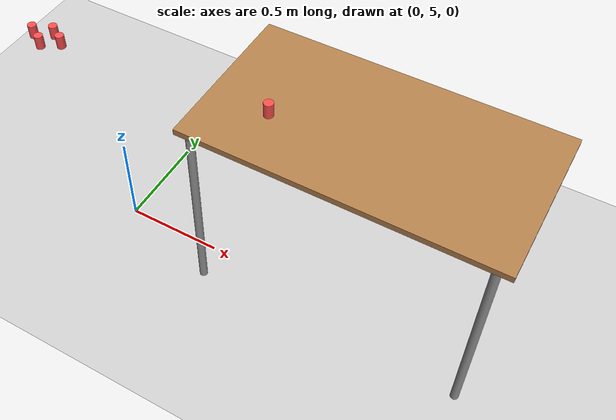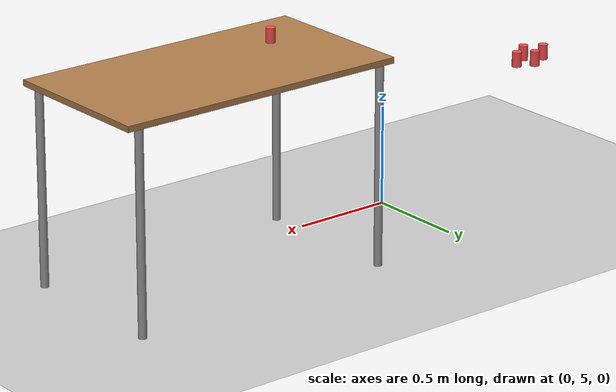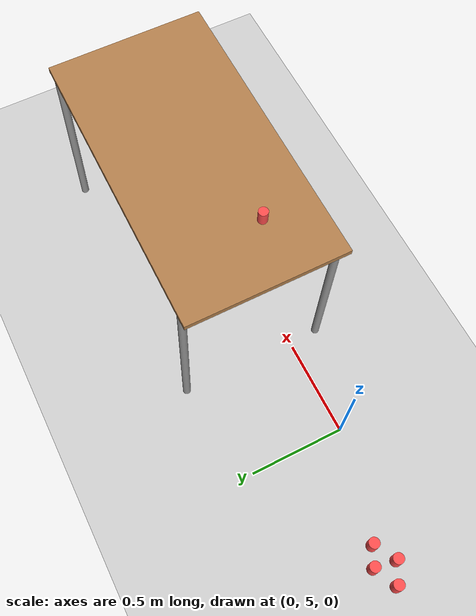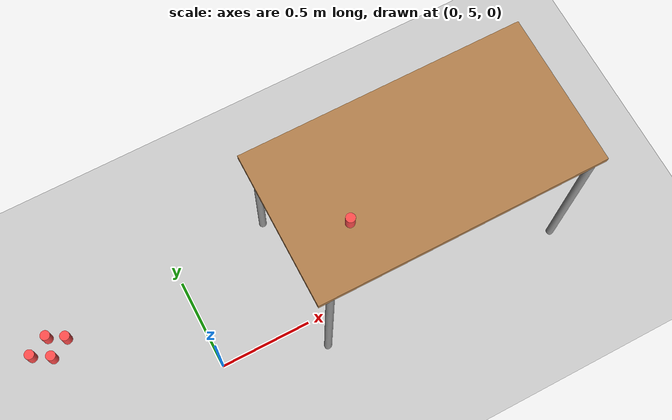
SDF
<sdf version="1.6">
 <world name="default">
  <model name="ground_plane">
   <static>1</static>
   <link name="link">
    <collision name="collision">
     <geometry><plane><normal>0 0 1</normal><size>100 100</size></plane></geometry>
     <surface><friction><ode><mu>100</mu><mu2>50</mu2></ode></friction></surface>
    </collision>
    <visual name="visual">
     <cast_shadows>0</cast_shadows>
     <geometry><plane><normal>0 0 1</normal><size>100 100</size></plane></geometry>
     <material>
      <script><uri>file://media/materials/scripts/gazebo.material</uri><name>Gazebo/Grey</name></script>
     </material>
    </visual>
   </link>
  </model>
  <model name="table">
   <static>1</static>
   <link name="link">
    <collision name="surface">
     <pose>0 0 1 0 -0 0</pose>
     <geometry><box><size>1.5 0.8 0.03</size></box></geometry>
     <surface><friction><ode><mu>0.6</mu><mu2>0.6</mu2></ode></friction></surface>
    </collision>
    <visual name="visual1">
     <pose>0 0 1 0 -0 0</pose>
     <geometry><box><size>1.5 0.8 0.03</size></box></geometry>
     <material>
      <script><uri>file://media/materials/scripts/gazebo.material</uri><name>Gazebo/Wood</name></script>
     </material>
    </visual>
    <collision name="front_left_leg">
     <pose>0.68 0.38 0.5 0 -0 0</pose>
     <geometry><cylinder><radius>0.02</radius><length>1</length></cylinder></geometry>
    </collision>
    <visual name="front_left_leg">
     <pose>0.68 0.38 0.5 0 -0 0</pose>
     <geometry><cylinder><radius>0.02</radius><length>1</length></cylinder></geometry>
     <material>
      <script><uri>file://media/materials/scripts/gazebo.material</uri><name>Gazebo/Grey</name></script>
     </material>
    </visual>
    <collision name="front_right_leg">
     <pose>0.68 -0.38 0.5 0 -0 0</pose>
     <geometry><cylinder><radius>0.02</radius><length>1</length></cylinder></geometry>
    </collision>
    <visual name="front_right_leg">
     <pose>0.68 -0.38 0.5 0 -0 0</pose>
     <geometry><cylinder><radius>0.02</radius><length>1</length></cylinder></geometry>
     <material>
      <script><uri>file://media/materials/scripts/gazebo.material</uri><name>Gazebo/Grey</name></script>
     </material>
    </visual>
    <collision name="back_right_leg">
     <pose>-0.68 -0.38 0.5 0 -0 0</pose>
     <geometry><cylinder><radius>0.02</radius><length>1</length></cylinder></geometry>
    </collision>
    <visual name="back_right_leg">
     <pose>-0.68 -0.38 0.5 0 -0 0</pose>
     <geometry><cylinder><radius>0.02</radius><length>1</length></cylinder></geometry>
     <material>
      <script><uri>file://media/materials/scripts/gazebo.material</uri><name>Gazebo/Grey</name></script>
     </material>
    </visual>
    <collision name="back_left_leg">
     <pose>-0.68 0.38 0.5 0 -0 0</pose>
     <geometry><cylinder><radius>0.02</radius><length>1</length></cylinder></geometry>
    </collision>
    <visual name="back_left_leg">
     <pose>-0.68 0.38 0.5 0 -0 0</pose>
     <geometry><cylinder><radius>0.02</radius><length>1</length></cylinder></geometry>
     <material>
      <script><uri>file://media/materials/scripts/gazebo.material</uri><name>Gazebo/Grey</name></script>
     </material>
    </visual>
   </link>
   <pose>1.21515 5.225 0 0 -0 0</pose>
  </model>
  <model name="cans">
   <link name="link">
    <inertial>
     <mass>0.362409</mass>
     <inertia>
      <ixx>0.00022647</ixx>
      <ixy>0</ixy>
      <ixz>0</ixz>
      <iyy>0.00022647</iyy>
      <iyz>0</iyz>
      <izz>0.0001015</izz>
     </inertia>
     <pose>0 0 0.2 0 -0 0</pose>
    </inertial>
    <self_collide>1</self_collide>
    <kinematic>1</kinematic>
    <visual name="ModelPreview_8::link::visual_1">
     <geometry><cylinder><radius>0.0236665</radius><length>0.0762781</length></cylinder></geometry>
     <material>
      <script><name>Gazebo/Grey</name><uri>file://media/materials/scripts/gazebo.material</uri></script>
      <shader type="vertex"><normal_map>__default__</normal_map></shader>
      <ambient>1 0.3 0.3 1</ambient>
      <diffuse>0.7 0.7 0.7 1</diffuse>
      <specular>0.01 0.01 0.01 1</specular>
      <emissive>0 0 0 1</emissive>
     </material>
    </visual>
    <visual name="visual">
     <geometry><cylinder><radius>0.0236665</radius><length>0.0762781</length></cylinder></geometry>
     <material>
      <script><name>Gazebo/Grey</name><uri>file://media/materials/scripts/gazebo.material</uri></script>
      <shader type="vertex"><normal_map>__default__</normal_map></shader>
      <ambient>1 0.3 0.3 1</ambient>
      <diffuse>0.7 0.7 0.7 1</diffuse>
      <specular>0.01 0.01 0.01 1</specular>
      <emissive>0 0 0 1</emissive>
     </material>
    </visual>
    <collision name="collision">
     <geometry><cylinder><radius>0.023667</radius><length>0.076278</length></cylinder></geometry>
     <surface>
      <friction>
       <ode><mu>1</mu><mu2>1</mu2><fdir1>0 0 0</fdir1><slip1>0</slip1><slip2>0</slip2></ode>
       <torsional>
        <coefficient>1</coefficient>
        <patch_radius>0</patch_radius>
        <surface_radius>0</surface_radius>
        <use_patch_radius>1</use_patch_radius>
        <ode><slip>0</slip></ode>
       </torsional>
      </friction>
      <bounce><restitution_coefficient>0</restitution_coefficient><threshold>1e+06</threshold></bounce>
      <contact>
       <collide_without_contact>0</collide_without_contact>
       <collide_without_contact_bitmask>1</collide_without_contact_bitmask>
       <collide_bitmask>1</collide_bitmask>
       <ode>
        <soft_cfm>0</soft_cfm>
        <soft_erp>0.2</soft_erp>
        <kp>1e+13</kp>
        <kd>1</kd>
        <max_vel>0.01</max_vel>
        <min_depth>0</min_depth>
       </ode>
       <bullet>
        <split_impulse>1</split_impulse>
        <split_impulse_penetration_threshold>-0.01</split_impulse_penetration_threshold>
        <soft_cfm>0</soft_cfm>
        <soft_erp>0.2</soft_erp>
        <kp>1e+13</kp>
        <kd>1</kd>
       </bullet>
      </contact>
     </surface>
    </collision>
   </link>
   <static>0</static>
   <pose>0.769898 5.0995 1.05 0 -0 0</pose>
  </model>
  <model name="cans_3">
   <link name="link">
    <inertial>
     <mass>0.362409</mass>
     <inertia>
      <ixx>0.00022647</ixx>
      <ixy>0</ixy>
      <ixz>0</ixz>
      <iyy>0.00022647</iyy>
      <iyz>0</iyz>
      <izz>0.0001015</izz>
     </inertia>
     <pose>0 0 0.2 0 -0 0</pose>
    </inertial>
    <self_collide>1</self_collide>
    <kinematic>1</kinematic>
    <visual name="ModelPreview_8::link::visual_1">
     <geometry><cylinder><radius>0.0236665</radius><length>0.0762781</length></cylinder></geometry>
     <material>
      <script><name>Gazebo/Grey</name><uri>file://media/materials/scripts/gazebo.material</uri></script>
      <shader type="vertex"><normal_map>__default__</normal_map></shader>
      <ambient>1 0.3 0.3 1</ambient>
      <diffuse>0.7 0.7 0.7 1</diffuse>
      <specular>0.01 0.01 0.01 1</specular>
      <emissive>0 0 0 1</emissive>
     </material>
    </visual>
    <visual name="visual">
     <geometry><cylinder><radius>0.0236665</radius><length>0.0762781</length></cylinder></geometry>
     <material>
      <script><name>Gazebo/Grey</name><uri>file://media/materials/scripts/gazebo.material</uri></script>
      <shader type="vertex"><normal_map>__default__</normal_map></shader>
      <ambient>1 0.3 0.3 1</ambient>
      <diffuse>0.7 0.7 0.7 1</diffuse>
      <specular>0.01 0.01 0.01 1</specular>
      <emissive>0 0 0 1</emissive>
     </material>
    </visual>
    <collision name="collision">
     <geometry><cylinder><radius>0.023667</radius><length>0.076278</length></cylinder></geometry>
     <surface>
      <friction>
       <ode><mu>1</mu><mu2>1</mu2><fdir1>0 0 0</fdir1><slip1>0</slip1><slip2>0</slip2></ode>
       <torsional>
        <coefficient>1</coefficient>
        <patch_radius>0</patch_radius>
        <surface_radius>0</surface_radius>
        <use_patch_radius>1</use_patch_radius>
        <ode><slip>0</slip></ode>
       </torsional>
      </friction>
      <bounce><restitution_coefficient>0</restitution_coefficient><threshold>1e+06</threshold></bounce>
      <contact>
       <collide_without_contact>0</collide_without_contact>
       <collide_without_contact_bitmask>1</collide_without_contact_bitmask>
       <collide_bitmask>1</collide_bitmask>
       <ode>
        <soft_cfm>0</soft_cfm>
        <soft_erp>0.2</soft_erp>
        <kp>1e+13</kp>
        <kd>1</kd>
        <max_vel>0.01</max_vel>
        <min_depth>0</min_depth>
       </ode>
       <bullet>
        <split_impulse>1</split_impulse>
        <split_impulse_penetration_threshold>-0.01</split_impulse_penetration_threshold>
        <soft_cfm>0</soft_cfm>
        <soft_erp>0.2</soft_erp>
        <kp>1e+13</kp>
        <kd>1</kd>
       </bullet>
      </contact>
     </surface>
    </collision>
   </link>
   <static>0</static>
   <pose>-0.595365 5.30441 0.7 0 -0 0</pose>
  </model>
  <model name="cans_4">
   <link name="link">
    <inertial>
     <mass>0.362409</mass>
     <inertia>
      <ixx>0.00022647</ixx>
      <ixy>0</ixy>
      <ixz>0</ixz>
      <iyy>0.00022647</iyy>
      <iyz>0</iyz>
      <izz>0.0001015</izz>
     </inertia>
     <pose>0 0 0.2 0 -0 0</pose>
    </inertial>
    <self_collide>1</self_collide>
    <kinematic>1</kinematic>
    <visual name="ModelPreview_8::link::visual_1">
     <geometry><cylinder><radius>0.0236665</radius><length>0.0762781</length></cylinder></geometry>
     <material>
      <script><name>Gazebo/Grey</name><uri>file://media/materials/scripts/gazebo.material</uri></script>
      <shader type="vertex"><normal_map>__default__</normal_map></shader>
      <ambient>1 0.3 0.3 1</ambient>
      <diffuse>0.7 0.7 0.7 1</diffuse>
      <specular>0.01 0.01 0.01 1</specular>
      <emissive>0 0 0 1</emissive>
     </material>
    </visual>
    <visual name="visual">
     <geometry><cylinder><radius>0.0236665</radius><length>0.0762781</length></cylinder></geometry>
     <material>
      <script><name>Gazebo/Grey</name><uri>file://media/materials/scripts/gazebo.material</uri></script>
      <shader type="vertex"><normal_map>__default__</normal_map></shader>
      <ambient>1 0.3 0.3 1</ambient>
      <diffuse>0.7 0.7 0.7 1</diffuse>
      <specular>0.01 0.01 0.01 1</specular>
      <emissive>0 0 0 1</emissive>
     </material>
    </visual>
    <collision name="collision">
     <geometry><cylinder><radius>0.023667</radius><length>0.076278</length></cylinder></geometry>
     <surface>
      <friction>
       <ode><mu>1</mu><mu2>1</mu2><fdir1>0 0 0</fdir1><slip1>0</slip1><slip2>0</slip2></ode>
       <torsional>
        <coefficient>1</coefficient>
        <patch_radius>0</patch_radius>
        <surface_radius>0</surface_radius>
        <use_patch_radius>1</use_patch_radius>
        <ode><slip>0</slip></ode>
       </torsional>
      </friction>
      <bounce><restitution_coefficient>0</restitution_coefficient><threshold>1e+06</threshold></bounce>
      <contact>
       <collide_without_contact>0</collide_without_contact>
       <collide_without_contact_bitmask>1</collide_without_contact_bitmask>
       <collide_bitmask>1</collide_bitmask>
       <ode>
        <soft_cfm>0</soft_cfm>
        <soft_erp>0.2</soft_erp>
        <kp>1e+13</kp>
        <kd>1</kd>
        <max_vel>0.01</max_vel>
        <min_depth>0</min_depth>
       </ode>
       <bullet>
        <split_impulse>1</split_impulse>
        <split_impulse_penetration_threshold>-0.01</split_impulse_penetration_threshold>
        <soft_cfm>0</soft_cfm>
        <soft_erp>0.2</soft_erp>
        <kp>1e+13</kp>
        <kd>1</kd>
       </bullet>
      </contact>
     </surface>
    </collision>
   </link>
   <static>0</static>
   <pose>-0.674443 5.34813 0.7 0 -0 0</pose>
  </model>
  <model name="cans_5">
   <link name="link">
    <inertial>
     <mass>0.362409</mass>
     <inertia>
      <ixx>0.00022647</ixx>
      <ixy>0</ixy>
      <ixz>0</ixz>
      <iyy>0.00022647</iyy>
      <iyz>0</iyz>
      <izz>0.0001015</izz>
     </inertia>
     <pose>0 0 0.2 0 -0 0</pose>
    </inertial>
    <self_collide>1</self_collide>
    <kinematic>1</kinematic>
    <visual name="ModelPreview_8::link::visual_1">
     <geometry><cylinder><radius>0.0236665</radius><length>0.0762781</length></cylinder></geometry>
     <material>
      <script><name>Gazebo/Grey</name><uri>file://media/materials/scripts/gazebo.material</uri></script>
      <shader type="vertex"><normal_map>__default__</normal_map></shader>
      <ambient>1 0.3 0.3 1</ambient>
      <diffuse>0.7 0.7 0.7 1</diffuse>
      <specular>0.01 0.01 0.01 1</specular>
      <emissive>0 0 0 1</emissive>
     </material>
    </visual>
    <visual name="visual">
     <geometry><cylinder><radius>0.0236665</radius><length>0.0762781</length></cylinder></geometry>
     <material>
      <script><name>Gazebo/Grey</name><uri>file://media/materials/scripts/gazebo.material</uri></script>
      <shader type="vertex"><normal_map>__default__</normal_map></shader>
      <ambient>1 0.3 0.3 1</ambient>
      <diffuse>0.7 0.7 0.7 1</diffuse>
      <specular>0.01 0.01 0.01 1</specular>
      <emissive>0 0 0 1</emissive>
     </material>
    </visual>
    <collision name="collision">
     <geometry><cylinder><radius>0.023667</radius><length>0.076278</length></cylinder></geometry>
     <surface>
      <friction>
       <ode><mu>1</mu><mu2>1</mu2><fdir1>0 0 0</fdir1><slip1>0</slip1><slip2>0</slip2></ode>
       <torsional>
        <coefficient>1</coefficient>
        <patch_radius>0</patch_radius>
        <surface_radius>0</surface_radius>
        <use_patch_radius>1</use_patch_radius>
        <ode><slip>0</slip></ode>
       </torsional>
      </friction>
      <bounce><restitution_coefficient>0</restitution_coefficient><threshold>1e+06</threshold></bounce>
      <contact>
       <collide_without_contact>0</collide_without_contact>
       <collide_without_contact_bitmask>1</collide_without_contact_bitmask>
       <collide_bitmask>1</collide_bitmask>
       <ode>
        <soft_cfm>0</soft_cfm>
        <soft_erp>0.2</soft_erp>
        <kp>1e+13</kp>
        <kd>1</kd>
        <max_vel>0.01</max_vel>
        <min_depth>0</min_depth>
       </ode>
       <bullet>
        <split_impulse>1</split_impulse>
        <split_impulse_penetration_threshold>-0.01</split_impulse_penetration_threshold>
        <soft_cfm>0</soft_cfm>
        <soft_erp>0.2</soft_erp>
        <kp>1e+13</kp>
        <kd>1</kd>
       </bullet>
      </contact>
     </surface>
    </collision>
   </link>
   <static>0</static>
   <pose>-0.688501 5.24902 0.7 0 -0 0</pose>
  </model>
  <model name="cans_6">
   <link name="link">
    <inertial>
     <mass>0.362409</mass>
     <inertia>
      <ixx>0.00022647</ixx>
      <ixy>0</ixy>
      <ixz>0</ixz>
      <iyy>0.00022647</iyy>
      <iyz>0</iyz>
      <izz>0.0001015</izz>
     </inertia>
     <pose>0 0 0.2 0 -0 0</pose>
    </inertial>
    <self_collide>1</self_collide>
    <kinematic>1</kinematic>
    <visual name="ModelPreview_8::link::visual_1">
     <geometry><cylinder><radius>0.0236665</radius><length>0.0762781</length></cylinder></geometry>
     <material>
      <script><name>Gazebo/Grey</name><uri>file://media/materials/scripts/gazebo.material</uri></script>
      <shader type="vertex"><normal_map>__default__</normal_map></shader>
      <ambient>1 0.3 0.3 1</ambient>
      <diffuse>0.7 0.7 0.7 1</diffuse>
      <specular>0.01 0.01 0.01 1</specular>
      <emissive>0 0 0 1</emissive>
     </material>
    </visual>
    <visual name="visual">
     <geometry><cylinder><radius>0.0236665</radius><length>0.0762781</length></cylinder></geometry>
     <material>
      <script><name>Gazebo/Grey</name><uri>file://media/materials/scripts/gazebo.material</uri></script>
      <shader type="vertex"><normal_map>__default__</normal_map></shader>
      <ambient>1 0.3 0.3 1</ambient>
      <diffuse>0.7 0.7 0.7 1</diffuse>
      <specular>0.01 0.01 0.01 1</specular>
      <emissive>0 0 0 1</emissive>
     </material>
    </visual>
    <collision name="collision">
     <geometry><cylinder><radius>0.023667</radius><length>0.076278</length></cylinder></geometry>
     <surface>
      <friction>
       <ode><mu>1</mu><mu2>1</mu2><fdir1>0 0 0</fdir1><slip1>0</slip1><slip2>0</slip2></ode>
       <torsional>
        <coefficient>1</coefficient>
        <patch_radius>0</patch_radius>
        <surface_radius>0</surface_radius>
        <use_patch_radius>1</use_patch_radius>
        <ode><slip>0</slip></ode>
       </torsional>
      </friction>
      <bounce><restitution_coefficient>0</restitution_coefficient><threshold>1e+06</threshold></bounce>
      <contact>
       <collide_without_contact>0</collide_without_contact>
       <collide_without_contact_bitmask>1</collide_without_contact_bitmask>
       <collide_bitmask>1</collide_bitmask>
       <ode>
        <soft_cfm>0</soft_cfm>
        <soft_erp>0.2</soft_erp>
        <kp>1e+13</kp>
        <kd>1</kd>
        <max_vel>0.01</max_vel>
        <min_depth>0</min_depth>
       </ode>
       <bullet>
        <split_impulse>1</split_impulse>
        <split_impulse_penetration_threshold>-0.01</split_impulse_penetration_threshold>
        <soft_cfm>0</soft_cfm>
        <soft_erp>0.2</soft_erp>
        <kp>1e+13</kp>
        <kd>1</kd>
       </bullet>
      </contact>
     </surface>
    </collision>
   </link>
   <static>0</static>
   <pose>-0.772988 5.29956 0.7 0 -0 0</pose>
  </model>
 </world>
</sdf>
